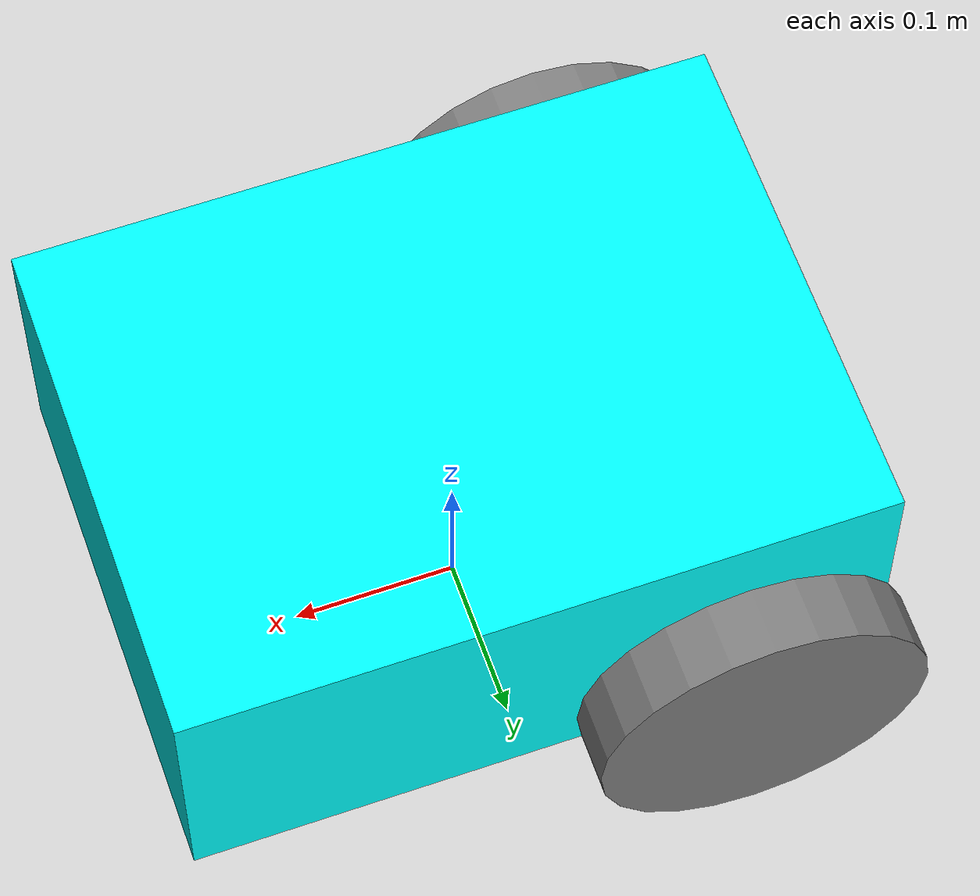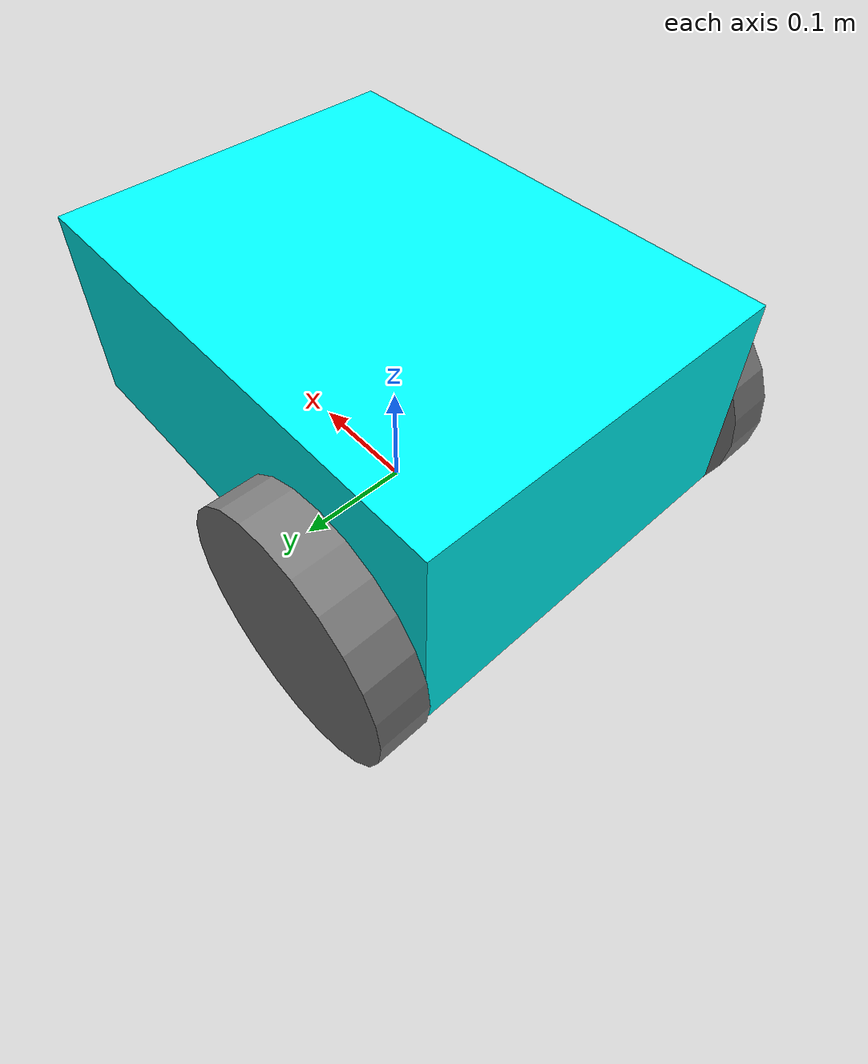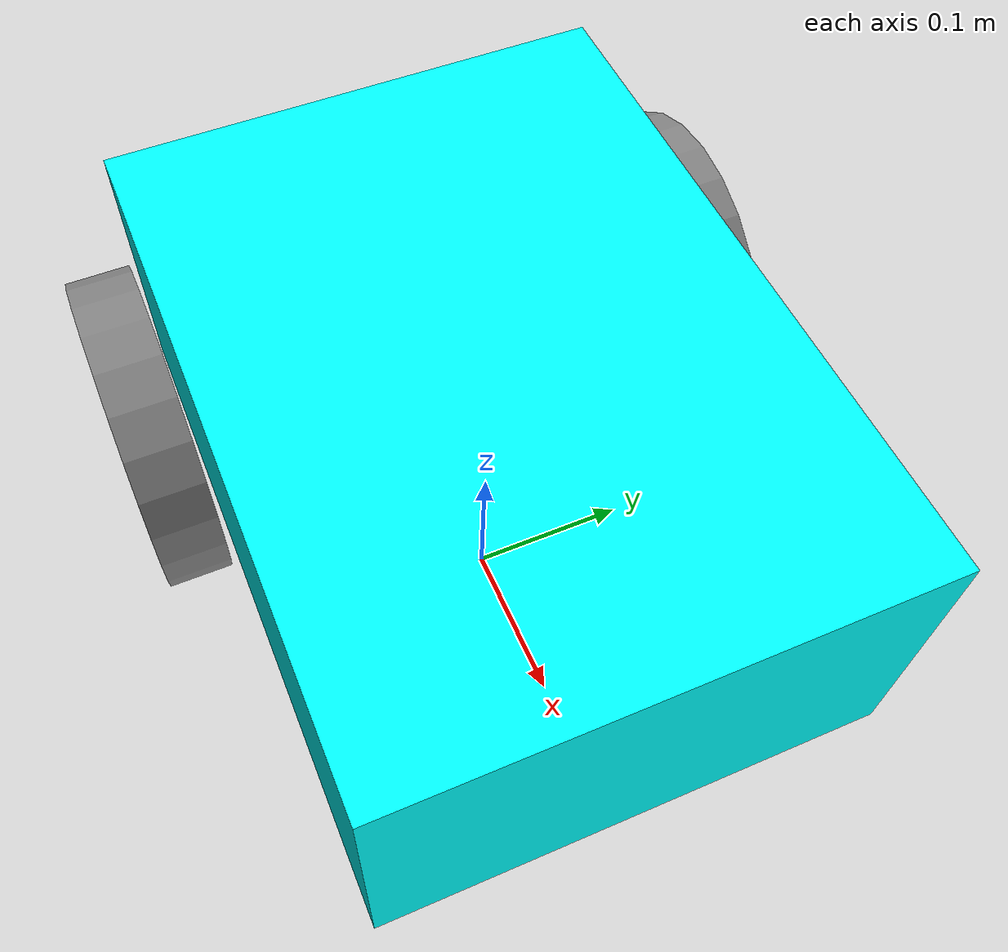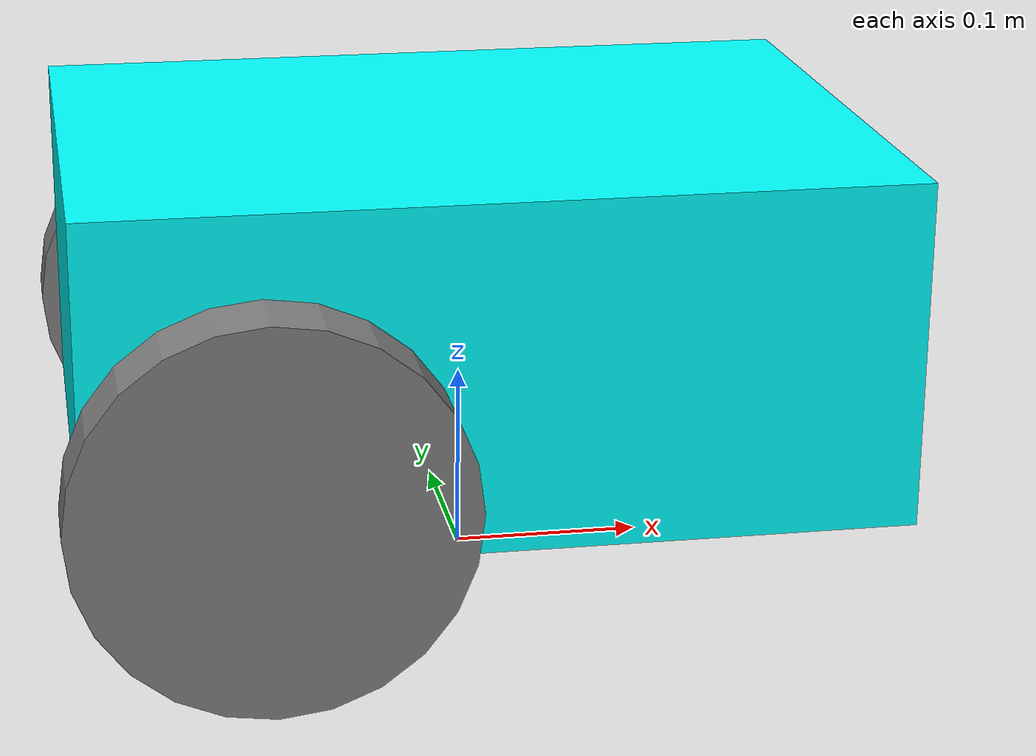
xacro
<?xml version="1.0"?>
<robot name="dif_bot" xmlns:xacro="http://ros.org/wiki/xacro">

  <xacro:property name="base_width" value="0.31"/>
  <xacro:property name="base_length" value="0.42"/>
  <xacro:property name="base_height" value="0.18"/>
  <xacro:property name="wheel_radius" value="0.10"/>
  <xacro:property name="wheel_width" value="0.04"/>
  <xacro:property name="wheel_ygap" value="0.025"/>
  <xacro:property name="wheel_zoff" value="0.05"/>
  <xacro:property name="wheel_xoff" value="0.12"/>
  <xacro:property name="caster_xoff" value="0.14"/>

  <xacro:macro name="box_inertia" params="m w h d">
    <inertial>
      <origin xyz="0 0 0" rpy="${pi/2} 0 ${pi/2}"/>
      <mass value="${m}"/>
      <inertia ixx="${(m/12) * (h*h + d*d)}" ixy="0.0" ixz="0.0"
               iyy="${(m/12) * (w*w + d*d)}" iyz="0.0"
               izz="${(m/12) * (w*w + h*h)}"/>
    </inertial>
  </xacro:macro>

  <xacro:macro name="cylinder_inertia" params="m r h">
    <inertial>
      <origin xyz="0 0 0" rpy="${pi/2} 0 0" />
      <mass value="${m}"/>
      <inertia ixx="${(m/12) * (3*r*r + h*h)}" ixy="0" ixz="0"
               iyy="${(m/12) * (3*r*r + h*h)}" iyz="0"
               izz="${(m/2) * (r*r)}"/>
    </inertial>
  </xacro:macro>

  <xacro:macro name="sphere_inertia" params="m r">
    <inertial>
      <mass value="${m}"/>
      <inertia ixx="${(2/5) * m * (r*r)}" ixy="0.0" ixz="0.0"
               iyy="${(2/5) * m * (r*r)}" iyz="0.0"
               izz="${(2/5) * m * (r*r)}"/>
    </inertial>
  </xacro:macro>

  <link name="base_footprint"/>

  <joint name="base_joint" type="fixed">
    <parent link="base_footprint"/>
    <child link="base_link"/>
    <origin xyz="0 0 ${wheel_radius + wheel_zoff}" rpy="0 0 0"/>
  </joint>

  <link name="base_link">
    <visual>
      <geometry>
        <box size="${base_length} ${base_width} ${base_height}"/>
      </geometry>
      <material name="Cyan">
        <color rgba="0 1.0 1.0 1.0"/>
      </material>
    </visual>
    <collision>
      <geometry>
        <box size="${base_length} ${base_width} ${base_height}"/>
      </geometry>
    </collision>
    <xacro:box_inertia m="15" w="${base_width}" d="${base_length}" h="${base_height}"/>
  </link>

  <xacro:macro name="wheel" params="prefix x_reflect y_reflect">
    <link name="${prefix}_link">
      <visual>
        <origin xyz="0 0 0" rpy="${pi/2} 0 0"/>
        <geometry>
          <cylinder radius="${wheel_radius}" length="${wheel_width}"/>
        </geometry>
        <material name="Gray">
          <color rgba="0.5 0.5 0.5 1.0"/>
        </material>
      </visual>
      <collision>
        <origin xyz="0 0 0" rpy="${pi/2} 0 0"/>
        <geometry>
          <cylinder radius="${wheel_radius}" length="${wheel_width}"/>
        </geometry>
      </collision>
      <xacro:cylinder_inertia m="0.5" r="${wheel_radius}" h="${wheel_width}"/>
    </link>

    <joint name="${prefix}_joint" type="continuous">
      <parent link="base_link"/>
      <child link="${prefix}_link"/>
      <origin xyz="${x_reflect*wheel_xoff} ${y_reflect*(base_width/2+wheel_ygap)} ${-wheel_zoff}" rpy="0 0 0"/>
      <axis xyz="0 1 0"/>
    </joint>
  </xacro:macro>

  <xacro:wheel prefix="drivewhl_l" x_reflect="-1" y_reflect="1" />
  <xacro:wheel prefix="drivewhl_r" x_reflect="-1" y_reflect="-1" />

  <link name="caster_wheel">
    <visual>
      <geometry>
        <sphere radius="${(wheel_radius+wheel_zoff-(base_height/2))}"/>
      </geometry>
      <material name="Gray"/>
    </visual>
    <collision>
      <origin xyz="0 0 0" rpy="0 0 0"/>
      <geometry>
        <sphere radius="${(wheel_radius+wheel_zoff-(base_height/2))}"/>
      </geometry>
    </collision>
    <xacro:sphere_inertia m="0.5" r="${(wheel_radius+wheel_zoff-(base_height/2))}"/>
  </link>

  <joint name="caster_joint" type="fixed">
    <parent link="base_link"/>
    <child link="caster_wheel"/>
    <origin xyz="${caster_xoff} 0.0 ${-(base_height/2)}" rpy="0 0 0"/>
  </joint>

</robot>
